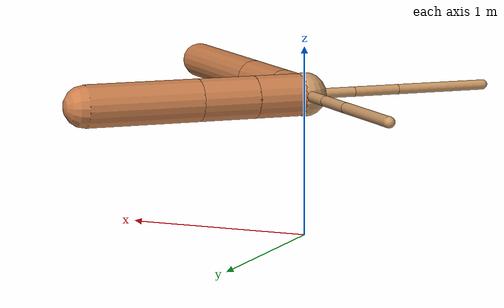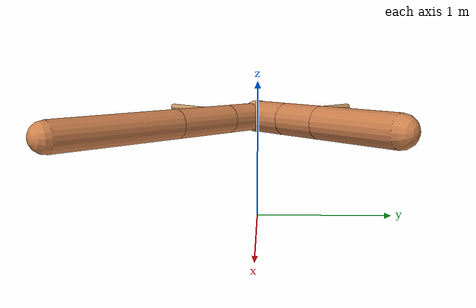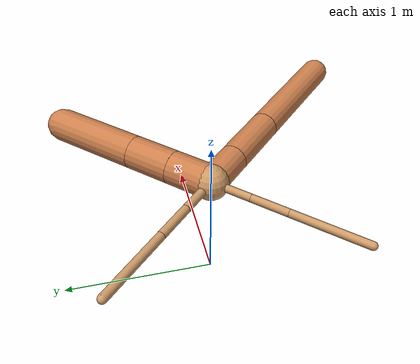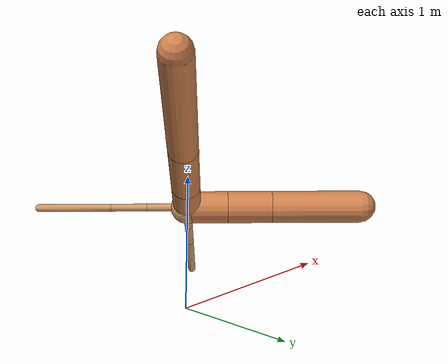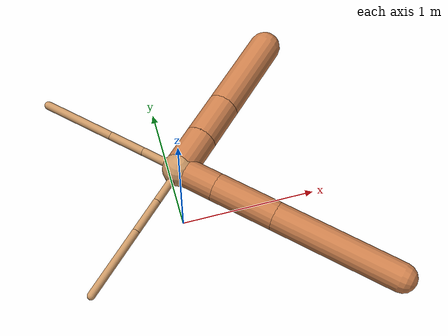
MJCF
<?xml version="1.0" ?>
<mujoco model="ant">

	<compiler angle="degree" coordinate="local" inertiafromgeom="true"/>

	<option integrator="RK4" timestep="0.01"/>

	<custom>

		<numeric data="0.0 0.0 0.55 1.0 0.0 0.0 0.0 0.0 1.0 0.0 -1.0 0.0 -1.0 0.0 1.0" name="init_qpos"/>

	</custom>

	<default>

		<joint armature="1" damping="1" limited="true"/>

		<geom conaffinity="0" condim="3" density="5.0" friction="1.5 0.1 0.1" margin="0.01" rgba="0.8 0.6 0.4 1"/>

	</default>

	<worldbody>

		<body name="torso" pos="0 0 0.75">

			<geom name="torso_geom" pos="0 0 0" size="0.11555940034933682" type="sphere"/>

			<!--joint armature="0" damping="0" limited="false" margin="0.01" name="root" pos="0 0 0" type="free"/-->

			<body name="front_left_leg" pos="0 0 0">

				<geom fromto="0 0 0 0.2 0.2 0" name="aux_1_geom" size="0.11102461996732695" type="capsule" rgba=".8 .5 .3 1"/>

				<body name="aux_1" pos="0.2 0.2 0">

					<joint axis="0 0 1" name="hip_1" pos="0.0 0.0 0.0" range="-40 40" type="hinge"/>

					<geom fromto="0 0 0 0.21671007873250164 0.21671007873250164 0" name="left_leg_geom" size="0.11102461996732695" type="capsule" rgba=".8 .5 .3 1"/>

					<body pos="0.21671007873250164 0.21671007873250164 0" name="front_left_foot">

						<joint axis="-1 1 0" name="ankle_1" pos="0.0 0.0 0.0" range="30 100" type="hinge"/>

						<geom fromto="0 0 0 0.4334201574650033 0.4334201574650033 0" name="left_ankle_geom" size="0.11102461996732695" type="capsule" rgba=".8 .5 .3 1"/>

					</body>

				</body>

			</body>

			<body name="front_right_leg" pos="0 0 0">

				<geom fromto="0 0 0 -0.2 0.2 0" name="aux_2_geom" size="0.028490843118381876" type="capsule"/>

				<body name="aux_2" pos="-0.2 0.2 0">

					<joint axis="0 0 1" name="hip_2" pos="0.0 0.0 0.0" range="-40 40" type="hinge"/>

					<geom fromto="0 0 0 -0.183121506252122 0.183121506252122 0" name="right_leg_geom" size="0.028490843118381876" type="capsule"/>

					<body pos="-0.183121506252122 0.183121506252122 0" name="front_right_foot">

						<joint axis="1 1 0" name="ankle_2" pos="0.0 0.0 0.0" range="-100 -30" type="hinge"/>

						<geom fromto="0 0 0 -0.366243012504244 0.366243012504244 0" name="right_ankle_geom" size="0.028490843118381876" type="capsule"/>

					</body>

				</body>

			</body>

			<body name="left_back_leg" pos="0 0 0">

				<geom fromto="0 0 0 -0.2 -0.2 0" name="aux_3_geom" size="0.026037724283897896" type="capsule"/>

				<body name="aux_3" pos="-0.2 -0.2 0">

					<joint axis="0 0 1" name="hip_3" pos="0.0 0.0 0.0" range="-40 40" type="hinge"/>

					<geom fromto="0 0 0 -0.17860262899207371 -0.17860262899207371 0" name="back_leg_geom" size="0.026037724283897896" type="capsule"/>

					<body pos="-0.17860262899207371 -0.17860262899207371 0" name="left_back_foot">

						<joint axis="-1 1 0" name="ankle_3" pos="0.0 0.0 0.0" range="-100 -30" type="hinge"/>

						<geom fromto="0 0 0 -0.35720525798414743 -0.35720525798414743 0" name="third_ankle_geom" size="0.026037724283897896" type="capsule"/>

					</body>

				</body>

			</body>

			<body name="right_back_leg" pos="0 0 0">

				<geom fromto="0 0 0 0.2 -0.2 0" name="aux_4_geom" size="0.0966241282028542" type="capsule" rgba=".8 .5 .3 1"/>

				<body name="aux_4" pos="0.2 -0.2 0">

					<joint axis="0 0 1" name="hip_4" pos="0.0 0.0 0.0" range="-40 40" type="hinge"/>

					<geom fromto="0 0 0 0.3096326875216332 -0.3096326875216332 0" name="rightback_leg_geom" size="0.0966241282028542" type="capsule" rgba=".8 .5 .3 1"/>

					<body pos="0.3096326875216332 -0.3096326875216332 0" name="right_back_foot">

						<joint axis="1 1 0" name="ankle_4" pos="0.0 0.0 0.0" range="30 100" type="hinge"/>

						<geom fromto="0 0 0 0.6192653750432664 -0.6192653750432664 0" name="fourth_ankle_geom" size="0.0966241282028542" type="capsule" rgba=".8 .5 .3 1"/>

					</body>

				</body>

			</body>

		</body>

	</worldbody>

	<actuator>

		<motor ctrllimited="true" ctrlrange="-1.0 1.0" joint="hip_4" gear="150"/>

		<motor ctrllimited="true" ctrlrange="-1.0 1.0" joint="ankle_4" gear="150"/>

		<motor ctrllimited="true" ctrlrange="-1.0 1.0" joint="hip_1" gear="150"/>

		<motor ctrllimited="true" ctrlrange="-1.0 1.0" joint="ankle_1" gear="150"/>

		<motor ctrllimited="true" ctrlrange="-1.0 1.0" joint="hip_2" gear="150"/>

		<motor ctrllimited="true" ctrlrange="-1.0 1.0" joint="ankle_2" gear="150"/>

		<motor ctrllimited="true" ctrlrange="-1.0 1.0" joint="hip_3" gear="150"/>

		<motor ctrllimited="true" ctrlrange="-1.0 1.0" joint="ankle_3" gear="150"/>

	</actuator>

</mujoco>
